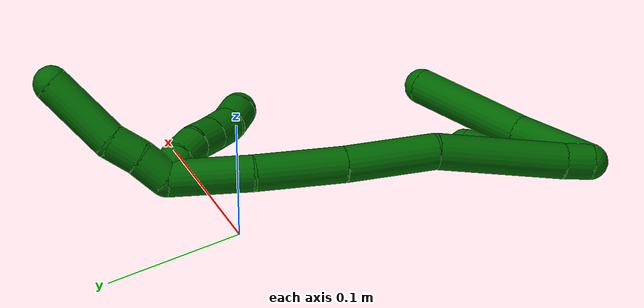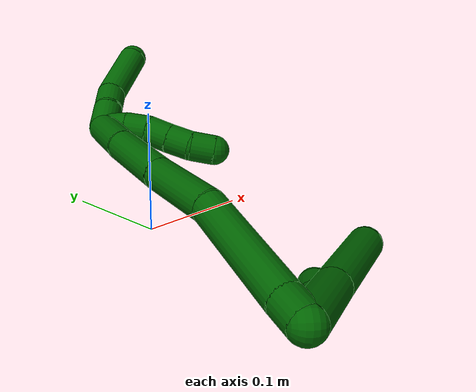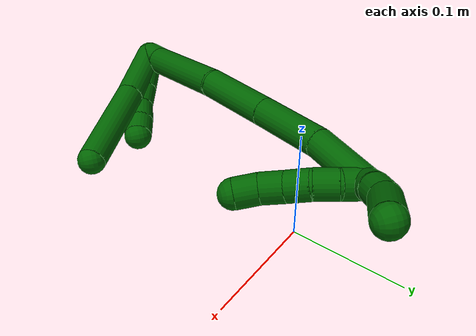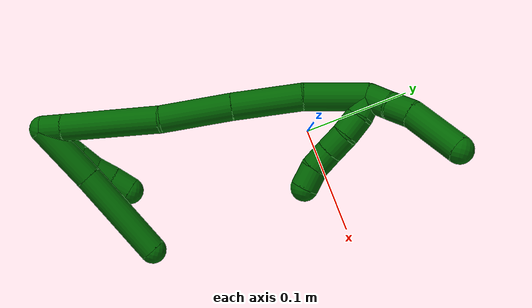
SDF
<sdf version="1.7">
 <world name="default">
  <model name="6">
   <static>0</static>
   <link name="6">
    <collision name="collision-cylinder-e_1_2_8">
     <pose>0.023418 0.010511 0.016057 -0.579586 0.884276 -0.280468</pose>
     <geometry><cylinder><radius>0.0125</radius><length>0.060555</length></cylinder></geometry>
     <surface>
      <friction><ode><mu>1.16</mu><mu2>1.16</mu2><slip1>0</slip1><slip2>0</slip2></ode></friction>
      <contact><ode><kp>1e+06</kp><kd>1</kd><max_vel>0</max_vel><min_depth>0.001</min_depth></ode></contact>
     </surface>
    </collision>
    <visual name="visual-cylinder-e_1_2_8">
     <pose>0.023418 0.010511 0.016057 -0.579586 0.884276 -0.280468</pose>
     <geometry><cylinder><radius>0.0125</radius><length>0.060555</length></cylinder></geometry>
     <material><ambient>0 0.392157 0.003922 1</ambient></material>
    </visual>
    <collision name="collision-cylinder-e_2_8_6">
     <pose>0.080051 0.037789 0.05693 -0.59423 0.837042 -0.27071</pose>
     <geometry><cylinder><radius>0.0125</radius><length>0.089445</length></cylinder></geometry>
     <surface>
      <friction><ode><mu>1.16</mu><mu2>1.16</mu2><slip1>0</slip1><slip2>0</slip2></ode></friction>
      <contact><ode><kp>1e+06</kp><kd>1</kd><max_vel>0</max_vel><min_depth>0.001</min_depth></ode></contact>
     </surface>
    </collision>
    <visual name="visual-cylinder-e_2_8_6">
     <pose>0.080051 0.037789 0.05693 -0.59423 0.837042 -0.27071</pose>
     <geometry><cylinder><radius>0.0125</radius><length>0.089445</length></cylinder></geometry>
     <material><ambient>0 0.392157 0.003922 1</ambient></material>
    </visual>
    <collision name="collision-cylinder-e_1_2_9">
     <pose>0.008988 0.001634 0.004068 -0.381937 1.11698 -0.240433</pose>
     <geometry><cylinder><radius>0.0125</radius><length>0.02</length></cylinder></geometry>
     <surface>
      <friction><ode><mu>1.16</mu><mu2>1.16</mu2><slip1>0</slip1><slip2>0</slip2></ode></friction>
      <contact><ode><kp>1e+06</kp><kd>1</kd><max_vel>0</max_vel><min_depth>0.001</min_depth></ode></contact>
     </surface>
    </collision>
    <visual name="visual-cylinder-e_1_2_9">
     <pose>0.008988 0.001634 0.004068 -0.381937 1.11698 -0.240433</pose>
     <geometry><cylinder><radius>0.0125</radius><length>0.02</length></cylinder></geometry>
     <material><ambient>0 0.392157 0.003922 1</ambient></material>
    </visual>
    <collision name="collision-cylinder-e_2_9_10">
     <pose>0.027043 0.004735 0.012089 -0.35539 1.13553 -0.228097</pose>
     <geometry><cylinder><radius>0.0125</radius><length>0.02</length></cylinder></geometry>
     <surface>
      <friction><ode><mu>1.16</mu><mu2>1.16</mu2><slip1>0</slip1><slip2>0</slip2></ode></friction>
      <contact><ode><kp>1e+06</kp><kd>1</kd><max_vel>0</max_vel><min_depth>0.001</min_depth></ode></contact>
     </surface>
    </collision>
    <visual name="visual-cylinder-e_2_9_10">
     <pose>0.027043 0.004735 0.012089 -0.35539 1.13553 -0.228097</pose>
     <geometry><cylinder><radius>0.0125</radius><length>0.02</length></cylinder></geometry>
     <material><ambient>0 0.392157 0.003922 1</ambient></material>
    </visual>
    <collision name="collision-cylinder-e_3_10_11">
     <pose>0.045125 0.00776 0.020082 -0.367949 1.12305 -0.233054</pose>
     <geometry><cylinder><radius>0.0125</radius><length>0.02</length></cylinder></geometry>
     <surface>
      <friction><ode><mu>1.16</mu><mu2>1.16</mu2><slip1>0</slip1><slip2>0</slip2></ode></friction>
      <contact><ode><kp>1e+06</kp><kd>1</kd><max_vel>0</max_vel><min_depth>0.001</min_depth></ode></contact>
     </surface>
    </collision>
    <visual name="visual-cylinder-e_3_10_11">
     <pose>0.045125 0.00776 0.020082 -0.367949 1.12305 -0.233054</pose>
     <geometry><cylinder><radius>0.0125</radius><length>0.02</length></cylinder></geometry>
     <material><ambient>0 0.392157 0.003922 1</ambient></material>
    </visual>
    <collision name="collision-cylinder-e_4_11_12">
     <pose>0.063325 0.012495 0.026472 -0.933975 1.16445 -0.640974</pose>
     <geometry><cylinder><radius>0.0125</radius><length>0.02</length></cylinder></geometry>
     <surface>
      <friction><ode><mu>1.16</mu><mu2>1.16</mu2><slip1>0</slip1><slip2>0</slip2></ode></friction>
      <contact><ode><kp>1e+06</kp><kd>1</kd><max_vel>0</max_vel><min_depth>0.001</min_depth></ode></contact>
     </surface>
    </collision>
    <visual name="visual-cylinder-e_4_11_12">
     <pose>0.063325 0.012495 0.026472 -0.933975 1.16445 -0.640974</pose>
     <geometry><cylinder><radius>0.0125</radius><length>0.02</length></cylinder></geometry>
     <material><ambient>0 0.392157 0.003922 1</ambient></material>
    </visual>
    <collision name="collision-cylinder-e_5_12_5">
     <pose>0.080968 0.020149 0.031726 -0.995343 1.00797 -0.582204</pose>
     <geometry><cylinder><radius>0.0125</radius><length>0.02</length></cylinder></geometry>
     <surface>
      <friction><ode><mu>1.16</mu><mu2>1.16</mu2><slip1>0</slip1><slip2>0</slip2></ode></friction>
      <contact><ode><kp>1e+06</kp><kd>1</kd><max_vel>0</max_vel><min_depth>0.001</min_depth></ode></contact>
     </surface>
    </collision>
    <visual name="visual-cylinder-e_5_12_5">
     <pose>0.080968 0.020149 0.031726 -0.995343 1.00797 -0.582204</pose>
     <geometry><cylinder><radius>0.0125</radius><length>0.02</length></cylinder></geometry>
     <material><ambient>0 0.392157 0.003922 1</ambient></material>
    </visual>
    <collision name="collision-cylinder-e_1_2_13">
     <pose>0.007129 0.006459 -0.003226 -2.034 0.779132 -1.17224</pose>
     <geometry><cylinder><radius>0.0125</radius><length>0.020292</length></cylinder></geometry>
     <surface>
      <friction><ode><mu>1.16</mu><mu2>1.16</mu2><slip1>0</slip1><slip2>0</slip2></ode></friction>
      <contact><ode><kp>1e+06</kp><kd>1</kd><max_vel>0</max_vel><min_depth>0.001</min_depth></ode></contact>
     </surface>
    </collision>
    <visual name="visual-cylinder-e_1_2_13">
     <pose>0.007129 0.006459 -0.003226 -2.034 0.779132 -1.17224</pose>
     <geometry><cylinder><radius>0.0125</radius><length>0.020292</length></cylinder></geometry>
     <material><ambient>0 0.392157 0.003922 1</ambient></material>
    </visual>
    <collision name="collision-cylinder-e_2_13_14">
     <pose>0.045094 0.044674 -0.021064 -2.00205 0.722826 -1.06616</pose>
     <geometry><cylinder><radius>0.0125</radius><length>0.093227</length></cylinder></geometry>
     <surface>
      <friction><ode><mu>1.16</mu><mu2>1.16</mu2><slip1>0</slip1><slip2>0</slip2></ode></friction>
      <contact><ode><kp>1e+06</kp><kd>1</kd><max_vel>0</max_vel><min_depth>0.001</min_depth></ode></contact>
     </surface>
    </collision>
    <visual name="visual-cylinder-e_2_13_14">
     <pose>0.045094 0.044674 -0.021064 -2.00205 0.722826 -1.06616</pose>
     <geometry><cylinder><radius>0.0125</radius><length>0.093227</length></cylinder></geometry>
     <material><ambient>0 0.392157 0.003922 1</ambient></material>
    </visual>
    <collision name="collision-cylinder-e_3_14_15">
     <pose>0.100241 0.093282 -0.049202 -2.24713 0.844213 -1.50505</pose>
     <geometry><cylinder><radius>0.0125</radius><length>0.065055</length></cylinder></geometry>
     <surface>
      <friction><ode><mu>1.16</mu><mu2>1.16</mu2><slip1>0</slip1><slip2>0</slip2></ode></friction>
      <contact><ode><kp>1e+06</kp><kd>1</kd><max_vel>0</max_vel><min_depth>0.001</min_depth></ode></contact>
     </surface>
    </collision>
    <visual name="visual-cylinder-e_3_14_15">
     <pose>0.100241 0.093282 -0.049202 -2.24713 0.844213 -1.50505</pose>
     <geometry><cylinder><radius>0.0125</radius><length>0.065055</length></cylinder></geometry>
     <material><ambient>0 0.392157 0.003922 1</ambient></material>
    </visual>
    <collision name="collision-cylinder-e_4_15_16">
     <pose>0.148206 0.127534 -0.074818 -2.17806 0.840304 -1.41414</pose>
     <geometry><cylinder><radius>0.0125</radius><length>0.063509</length></cylinder></geometry>
     <surface>
      <friction><ode><mu>1.16</mu><mu2>1.16</mu2><slip1>0</slip1><slip2>0</slip2></ode></friction>
      <contact><ode><kp>1e+06</kp><kd>1</kd><max_vel>0</max_vel><min_depth>0.001</min_depth></ode></contact>
     </surface>
    </collision>
    <visual name="visual-cylinder-e_4_15_16">
     <pose>0.148206 0.127534 -0.074818 -2.17806 0.840304 -1.41414</pose>
     <geometry><cylinder><radius>0.0125</radius><length>0.063509</length></cylinder></geometry>
     <material><ambient>0 0.392157 0.003922 1</ambient></material>
    </visual>
    <collision name="collision-cylinder-e_5_16_1">
     <pose>0.195615 0.159787 -0.094226 -2.02854 0.962085 -1.39611</pose>
     <geometry><cylinder><radius>0.0125</radius><length>0.057917</length></cylinder></geometry>
     <surface>
      <friction><ode><mu>1.16</mu><mu2>1.16</mu2><slip1>0</slip1><slip2>0</slip2></ode></friction>
      <contact><ode><kp>1e+06</kp><kd>1</kd><max_vel>0</max_vel><min_depth>0.001</min_depth></ode></contact>
     </surface>
    </collision>
    <visual name="visual-cylinder-e_5_16_1">
     <pose>0.195615 0.159787 -0.094226 -2.02854 0.962085 -1.39611</pose>
     <geometry><cylinder><radius>0.0125</radius><length>0.057917</length></cylinder></geometry>
     <material><ambient>0 0.392157 0.003922 1</ambient></material>
    </visual>
    <collision name="collision-cylinder-e_1_1_17">
     <pose>0.224001 0.185017 -0.099621 -1.38751 0.413341 -0.34527</pose>
     <geometry><cylinder><radius>0.0125</radius><length>0.023045</length></cylinder></geometry>
     <surface>
      <friction><ode><mu>1.16</mu><mu2>1.16</mu2><slip1>0</slip1><slip2>0</slip2></ode></friction>
      <contact><ode><kp>1e+06</kp><kd>1</kd><max_vel>0</max_vel><min_depth>0.001</min_depth></ode></contact>
     </surface>
    </collision>
    <visual name="visual-cylinder-e_1_1_17">
     <pose>0.224001 0.185017 -0.099621 -1.38751 0.413341 -0.34527</pose>
     <geometry><cylinder><radius>0.0125</radius><length>0.023045</length></cylinder></geometry>
     <material><ambient>0 0.392157 0.003922 1</ambient></material>
    </visual>
    <collision name="collision-cylinder-e_2_17_18">
     <pose>0.234747 0.204585 -0.096163 -1.40534 0.580911 -0.495855</pose>
     <geometry><cylinder><radius>0.0125</radius><length>0.022297</length></cylinder></geometry>
     <surface>
      <friction><ode><mu>1.16</mu><mu2>1.16</mu2><slip1>0</slip1><slip2>0</slip2></ode></friction>
      <contact><ode><kp>1e+06</kp><kd>1</kd><max_vel>0</max_vel><min_depth>0.001</min_depth></ode></contact>
     </surface>
    </collision>
    <visual name="visual-cylinder-e_2_17_18">
     <pose>0.234747 0.204585 -0.096163 -1.40534 0.580911 -0.495855</pose>
     <geometry><cylinder><radius>0.0125</radius><length>0.022297</length></cylinder></geometry>
     <material><ambient>0 0.392157 0.003922 1</ambient></material>
    </visual>
    <collision name="collision-cylinder-e_3_18_4">
     <pose>0.2522 0.23632 -0.084129 -1.13497 0.427677 -0.275097</pose>
     <geometry><cylinder><radius>0.0125</radius><length>0.054658</length></cylinder></geometry>
     <surface>
      <friction><ode><mu>1.16</mu><mu2>1.16</mu2><slip1>0</slip1><slip2>0</slip2></ode></friction>
      <contact><ode><kp>1e+06</kp><kd>1</kd><max_vel>0</max_vel><min_depth>0.001</min_depth></ode></contact>
     </surface>
    </collision>
    <visual name="visual-cylinder-e_3_18_4">
     <pose>0.2522 0.23632 -0.084129 -1.13497 0.427677 -0.275097</pose>
     <geometry><cylinder><radius>0.0125</radius><length>0.054658</length></cylinder></geometry>
     <material><ambient>0 0.392157 0.003922 1</ambient></material>
    </visual>
    <collision name="collision-cylinder-e_1_1_19">
     <pose>0.217134 0.174463 -0.091799 0.018322 -0.225773 -0.002077</pose>
     <geometry><cylinder><radius>0.0125</radius><length>0.02</length></cylinder></geometry>
     <surface>
      <friction><ode><mu>1.16</mu><mu2>1.16</mu2><slip1>0</slip1><slip2>0</slip2></ode></friction>
      <contact><ode><kp>1e+06</kp><kd>1</kd><max_vel>0</max_vel><min_depth>0.001</min_depth></ode></contact>
     </surface>
    </collision>
    <visual name="visual-cylinder-e_1_1_19">
     <pose>0.217134 0.174463 -0.091799 0.018322 -0.225773 -0.002077</pose>
     <geometry><cylinder><radius>0.0125</radius><length>0.02</length></cylinder></geometry>
     <material><ambient>0 0.392157 0.003922 1</ambient></material>
    </visual>
    <collision name="collision-cylinder-e_2_19_20">
     <pose>0.211847 0.1718 -0.072861 0.263883 -0.30978 -0.041438</pose>
     <geometry><cylinder><radius>0.0125</radius><length>0.02</length></cylinder></geometry>
     <surface>
      <friction><ode><mu>1.16</mu><mu2>1.16</mu2><slip1>0</slip1><slip2>0</slip2></ode></friction>
      <contact><ode><kp>1e+06</kp><kd>1</kd><max_vel>0</max_vel><min_depth>0.001</min_depth></ode></contact>
     </surface>
    </collision>
    <visual name="visual-cylinder-e_2_19_20">
     <pose>0.211847 0.1718 -0.072861 0.263883 -0.30978 -0.041438</pose>
     <geometry><cylinder><radius>0.0125</radius><length>0.02</length></cylinder></geometry>
     <material><ambient>0 0.392157 0.003922 1</ambient></material>
    </visual>
    <collision name="collision-cylinder-e_3_20_21">
     <pose>0.206159 0.164784 -0.055152 0.489108 -0.267104 -0.067029</pose>
     <geometry><cylinder><radius>0.0125</radius><length>0.02</length></cylinder></geometry>
     <surface>
      <friction><ode><mu>1.16</mu><mu2>1.16</mu2><slip1>0</slip1><slip2>0</slip2></ode></friction>
      <contact><ode><kp>1e+06</kp><kd>1</kd><max_vel>0</max_vel><min_depth>0.001</min_depth></ode></contact>
     </surface>
    </collision>
    <visual name="visual-cylinder-e_3_20_21">
     <pose>0.206159 0.164784 -0.055152 0.489108 -0.267104 -0.067029</pose>
     <geometry><cylinder><radius>0.0125</radius><length>0.02</length></cylinder></geometry>
     <material><ambient>0 0.392157 0.003922 1</ambient></material>
    </visual>
    <collision name="collision-cylinder-e_4_21_22">
     <pose>0.200781 0.156162 -0.037933 0.439246 -0.277417 -0.062306</pose>
     <geometry><cylinder><radius>0.0125</radius><length>0.02</length></cylinder></geometry>
     <surface>
      <friction><ode><mu>1.16</mu><mu2>1.16</mu2><slip1>0</slip1><slip2>0</slip2></ode></friction>
      <contact><ode><kp>1e+06</kp><kd>1</kd><max_vel>0</max_vel><min_depth>0.001</min_depth></ode></contact>
     </surface>
    </collision>
    <visual name="visual-cylinder-e_4_21_22">
     <pose>0.200781 0.156162 -0.037933 0.439246 -0.277417 -0.062306</pose>
     <geometry><cylinder><radius>0.0125</radius><length>0.02</length></cylinder></geometry>
     <material><ambient>0 0.392157 0.003922 1</ambient></material>
    </visual>
    <collision name="collision-cylinder-e_5_22_3">
     <pose>0.19701 0.149883 -0.019525 0.221906 -0.103432 -0.011534</pose>
     <geometry><cylinder><radius>0.0125</radius><length>0.02</length></cylinder></geometry>
     <surface>
      <friction><ode><mu>1.16</mu><mu2>1.16</mu2><slip1>0</slip1><slip2>0</slip2></ode></friction>
      <contact><ode><kp>1e+06</kp><kd>1</kd><max_vel>0</max_vel><min_depth>0.001</min_depth></ode></contact>
     </surface>
    </collision>
    <visual name="visual-cylinder-e_5_22_3">
     <pose>0.19701 0.149883 -0.019525 0.221906 -0.103432 -0.011534</pose>
     <geometry><cylinder><radius>0.0125</radius><length>0.02</length></cylinder></geometry>
     <material><ambient>0 0.392157 0.003922 1</ambient></material>
    </visual>
    <collision name="collision-sphere-3">
     <pose>0.195977 0.147694 -0.009823 0 -0 0</pose>
     <geometry><sphere><radius>0.0125</radius></sphere></geometry>
     <surface>
      <friction><ode><mu>1.16</mu><mu2>1.16</mu2><slip1>0</slip1><slip2>0</slip2></ode></friction>
      <contact><ode><kp>1e+06</kp><kd>1</kd><max_vel>0</max_vel><min_depth>0.001</min_depth></ode></contact>
     </surface>
    </collision>
    <visual name="visual-sphere-3">
     <pose>0.195977 0.147694 -0.009823 0 -0 0</pose>
     <geometry><sphere><radius>0.0125</radius></sphere></geometry>
     <material><ambient>0 0.392157 0.003922 1</ambient></material>
    </visual>
    <collision name="collision-sphere-22">
     <pose>0.198042 0.152072 -0.029228 0 -0 0</pose>
     <geometry><sphere><radius>0.0125</radius></sphere></geometry>
     <surface>
      <friction><ode><mu>1.16</mu><mu2>1.16</mu2><slip1>0</slip1><slip2>0</slip2></ode></friction>
      <contact><ode><kp>1e+06</kp><kd>1</kd><max_vel>0</max_vel><min_depth>0.001</min_depth></ode></contact>
     </surface>
    </collision>
    <visual name="visual-sphere-22">
     <pose>0.198042 0.152072 -0.029228 0 -0 0</pose>
     <geometry><sphere><radius>0.0125</radius></sphere></geometry>
     <material><ambient>0 0.392157 0.003922 1</ambient></material>
    </visual>
    <collision name="collision-sphere-21">
     <pose>0.20352 0.160252 -0.046637 0 -0 0</pose>
     <geometry><sphere><radius>0.0125</radius></sphere></geometry>
     <surface>
      <friction><ode><mu>1.16</mu><mu2>1.16</mu2><slip1>0</slip1><slip2>0</slip2></ode></friction>
      <contact><ode><kp>1e+06</kp><kd>1</kd><max_vel>0</max_vel><min_depth>0.001</min_depth></ode></contact>
     </surface>
    </collision>
    <visual name="visual-sphere-21">
     <pose>0.20352 0.160252 -0.046637 0 -0 0</pose>
     <geometry><sphere><radius>0.0125</radius></sphere></geometry>
     <material><ambient>0 0.392157 0.003922 1</ambient></material>
    </visual>
    <collision name="collision-sphere-20">
     <pose>0.208798 0.169316 -0.063666 0 -0 0</pose>
     <geometry><sphere><radius>0.0125</radius></sphere></geometry>
     <surface>
      <friction><ode><mu>1.16</mu><mu2>1.16</mu2><slip1>0</slip1><slip2>0</slip2></ode></friction>
      <contact><ode><kp>1e+06</kp><kd>1</kd><max_vel>0</max_vel><min_depth>0.001</min_depth></ode></contact>
     </surface>
    </collision>
    <visual name="visual-sphere-20">
     <pose>0.208798 0.169316 -0.063666 0 -0 0</pose>
     <geometry><sphere><radius>0.0125</radius></sphere></geometry>
     <material><ambient>0 0.392157 0.003922 1</ambient></material>
    </visual>
    <collision name="collision-sphere-19">
     <pose>0.214895 0.174284 -0.082055 0 -0 0</pose>
     <geometry><sphere><radius>0.0125</radius></sphere></geometry>
     <surface>
      <friction><ode><mu>1.16</mu><mu2>1.16</mu2><slip1>0</slip1><slip2>0</slip2></ode></friction>
      <contact><ode><kp>1e+06</kp><kd>1</kd><max_vel>0</max_vel><min_depth>0.001</min_depth></ode></contact>
     </surface>
    </collision>
    <visual name="visual-sphere-19">
     <pose>0.214895 0.174284 -0.082055 0 -0 0</pose>
     <geometry><sphere><radius>0.0125</radius></sphere></geometry>
     <material><ambient>0 0.392157 0.003922 1</ambient></material>
    </visual>
    <collision name="collision-sphere-11">
     <pose>0.054139 0.009317 0.024121 0 -0 0</pose>
     <geometry><sphere><radius>0.0125</radius></sphere></geometry>
     <surface>
      <friction><ode><mu>1.16</mu><mu2>1.16</mu2><slip1>0</slip1><slip2>0</slip2></ode></friction>
      <contact><ode><kp>1e+06</kp><kd>1</kd><max_vel>0</max_vel><min_depth>0.001</min_depth></ode></contact>
     </surface>
    </collision>
    <visual name="visual-sphere-11">
     <pose>0.054139 0.009317 0.024121 0 -0 0</pose>
     <geometry><sphere><radius>0.0125</radius></sphere></geometry>
     <material><ambient>0 0.392157 0.003922 1</ambient></material>
    </visual>
    <collision name="collision-sphere-10">
     <pose>0.036111 0.006202 0.016042 0 -0 0</pose>
     <geometry><sphere><radius>0.0125</radius></sphere></geometry>
     <surface>
      <friction><ode><mu>1.16</mu><mu2>1.16</mu2><slip1>0</slip1><slip2>0</slip2></ode></friction>
      <contact><ode><kp>1e+06</kp><kd>1</kd><max_vel>0</max_vel><min_depth>0.001</min_depth></ode></contact>
     </surface>
    </collision>
    <visual name="visual-sphere-10">
     <pose>0.036111 0.006202 0.016042 0 -0 0</pose>
     <geometry><sphere><radius>0.0125</radius></sphere></geometry>
     <material><ambient>0 0.392157 0.003922 1</ambient></material>
    </visual>
    <collision name="collision-sphere-6">
     <pose>0.113264 0.054556 0.081745 0 -0 0</pose>
     <geometry><sphere><radius>0.0125</radius></sphere></geometry>
     <surface>
      <friction><ode><mu>1.16</mu><mu2>1.16</mu2><slip1>0</slip1><slip2>0</slip2></ode></friction>
      <contact><ode><kp>1e+06</kp><kd>1</kd><max_vel>0</max_vel><min_depth>0.001</min_depth></ode></contact>
     </surface>
    </collision>
    <visual name="visual-sphere-6">
     <pose>0.113264 0.054556 0.081745 0 -0 0</pose>
     <geometry><sphere><radius>0.0125</radius></sphere></geometry>
     <material><ambient>0 0.392157 0.003922 1</ambient></material>
    </visual>
    <collision name="collision-sphere-9">
     <pose>0.017976 0.003268 0.008136 0 -0 0</pose>
     <geometry><sphere><radius>0.0125</radius></sphere></geometry>
     <surface>
      <friction><ode><mu>1.16</mu><mu2>1.16</mu2><slip1>0</slip1><slip2>0</slip2></ode></friction>
      <contact><ode><kp>1e+06</kp><kd>1</kd><max_vel>0</max_vel><min_depth>0.001</min_depth></ode></contact>
     </surface>
    </collision>
    <visual name="visual-sphere-9">
     <pose>0.017976 0.003268 0.008136 0 -0 0</pose>
     <geometry><sphere><radius>0.0125</radius></sphere></geometry>
     <material><ambient>0 0.392157 0.003922 1</ambient></material>
    </visual>
    <collision name="collision-sphere-2">
     <geometry><sphere><radius>0.0125</radius></sphere></geometry>
     <surface>
      <friction><ode><mu>1.16</mu><mu2>1.16</mu2><slip1>0</slip1><slip2>0</slip2></ode></friction>
      <contact><ode><kp>1e+06</kp><kd>1</kd><max_vel>0</max_vel><min_depth>0.001</min_depth></ode></contact>
     </surface>
    </collision>
    <visual name="visual-sphere-2">
     <geometry><sphere><radius>0.0125</radius></sphere></geometry>
     <material><ambient>0 0.392157 0.003922 1</ambient></material>
    </visual>
    <collision name="collision-sphere-8">
     <pose>0.046837 0.021021 0.032115 0 -0 0</pose>
     <geometry><sphere><radius>0.0125</radius></sphere></geometry>
     <surface>
      <friction><ode><mu>1.16</mu><mu2>1.16</mu2><slip1>0</slip1><slip2>0</slip2></ode></friction>
      <contact><ode><kp>1e+06</kp><kd>1</kd><max_vel>0</max_vel><min_depth>0.001</min_depth></ode></contact>
     </surface>
    </collision>
    <visual name="visual-sphere-8">
     <pose>0.046837 0.021021 0.032115 0 -0 0</pose>
     <geometry><sphere><radius>0.0125</radius></sphere></geometry>
     <material><ambient>0 0.392157 0.003922 1</ambient></material>
    </visual>
    <collision name="collision-sphere-12">
     <pose>0.072511 0.015672 0.028822 0 -0 0</pose>
     <geometry><sphere><radius>0.0125</radius></sphere></geometry>
     <surface>
      <friction><ode><mu>1.16</mu><mu2>1.16</mu2><slip1>0</slip1><slip2>0</slip2></ode></friction>
      <contact><ode><kp>1e+06</kp><kd>1</kd><max_vel>0</max_vel><min_depth>0.001</min_depth></ode></contact>
     </surface>
    </collision>
    <visual name="visual-sphere-12">
     <pose>0.072511 0.015672 0.028822 0 -0 0</pose>
     <geometry><sphere><radius>0.0125</radius></sphere></geometry>
     <material><ambient>0 0.392157 0.003922 1</ambient></material>
    </visual>
    <collision name="collision-sphere-5">
     <pose>0.089426 0.024625 0.03463 0 -0 0</pose>
     <geometry><sphere><radius>0.0125</radius></sphere></geometry>
     <surface>
      <friction><ode><mu>1.16</mu><mu2>1.16</mu2><slip1>0</slip1><slip2>0</slip2></ode></friction>
      <contact><ode><kp>1e+06</kp><kd>1</kd><max_vel>0</max_vel><min_depth>0.001</min_depth></ode></contact>
     </surface>
    </collision>
    <visual name="visual-sphere-5">
     <pose>0.089426 0.024625 0.03463 0 -0 0</pose>
     <geometry><sphere><radius>0.0125</radius></sphere></geometry>
     <material><ambient>0 0.392157 0.003922 1</ambient></material>
    </visual>
    <collision name="collision-sphere-13">
     <pose>0.014259 0.012917 -0.006451 0 -0 0</pose>
     <geometry><sphere><radius>0.0125</radius></sphere></geometry>
     <surface>
      <friction><ode><mu>1.16</mu><mu2>1.16</mu2><slip1>0</slip1><slip2>0</slip2></ode></friction>
      <contact><ode><kp>1e+06</kp><kd>1</kd><max_vel>0</max_vel><min_depth>0.001</min_depth></ode></contact>
     </surface>
    </collision>
    <visual name="visual-sphere-13">
     <pose>0.014259 0.012917 -0.006451 0 -0 0</pose>
     <geometry><sphere><radius>0.0125</radius></sphere></geometry>
     <material><ambient>0 0.392157 0.003922 1</ambient></material>
    </visual>
    <collision name="collision-sphere-14">
     <pose>0.075929 0.07643 -0.035677 0 -0 0</pose>
     <geometry><sphere><radius>0.0125</radius></sphere></geometry>
     <surface>
      <friction><ode><mu>1.16</mu><mu2>1.16</mu2><slip1>0</slip1><slip2>0</slip2></ode></friction>
      <contact><ode><kp>1e+06</kp><kd>1</kd><max_vel>0</max_vel><min_depth>0.001</min_depth></ode></contact>
     </surface>
    </collision>
    <visual name="visual-sphere-14">
     <pose>0.075929 0.07643 -0.035677 0 -0 0</pose>
     <geometry><sphere><radius>0.0125</radius></sphere></geometry>
     <material><ambient>0 0.392157 0.003922 1</ambient></material>
    </visual>
    <collision name="collision-sphere-15">
     <pose>0.124554 0.110134 -0.062728 0 -0 0</pose>
     <geometry><sphere><radius>0.0125</radius></sphere></geometry>
     <surface>
      <friction><ode><mu>1.16</mu><mu2>1.16</mu2><slip1>0</slip1><slip2>0</slip2></ode></friction>
      <contact><ode><kp>1e+06</kp><kd>1</kd><max_vel>0</max_vel><min_depth>0.001</min_depth></ode></contact>
     </surface>
    </collision>
    <visual name="visual-sphere-15">
     <pose>0.124554 0.110134 -0.062728 0 -0 0</pose>
     <geometry><sphere><radius>0.0125</radius></sphere></geometry>
     <material><ambient>0 0.392157 0.003922 1</ambient></material>
    </visual>
    <collision name="collision-sphere-16">
     <pose>0.171858 0.144933 -0.086908 0 -0 0</pose>
     <geometry><sphere><radius>0.0125</radius></sphere></geometry>
     <surface>
      <friction><ode><mu>1.16</mu><mu2>1.16</mu2><slip1>0</slip1><slip2>0</slip2></ode></friction>
      <contact><ode><kp>1e+06</kp><kd>1</kd><max_vel>0</max_vel><min_depth>0.001</min_depth></ode></contact>
     </surface>
    </collision>
    <visual name="visual-sphere-16">
     <pose>0.171858 0.144933 -0.086908 0 -0 0</pose>
     <geometry><sphere><radius>0.0125</radius></sphere></geometry>
     <material><ambient>0 0.392157 0.003922 1</ambient></material>
    </visual>
    <collision name="collision-sphere-1">
     <pose>0.219373 0.174641 -0.101544 0 -0 0</pose>
     <geometry><sphere><radius>0.0125</radius></sphere></geometry>
     <surface>
      <friction><ode><mu>1.16</mu><mu2>1.16</mu2><slip1>0</slip1><slip2>0</slip2></ode></friction>
      <contact><ode><kp>1e+06</kp><kd>1</kd><max_vel>0</max_vel><min_depth>0.001</min_depth></ode></contact>
     </surface>
    </collision>
    <visual name="visual-sphere-1">
     <pose>0.219373 0.174641 -0.101544 0 -0 0</pose>
     <geometry><sphere><radius>0.0125</radius></sphere></geometry>
     <material><ambient>0 0.392157 0.003922 1</ambient></material>
    </visual>
    <collision name="collision-sphere-18">
     <pose>0.240865 0.213777 -0.094628 0 -0 0</pose>
     <geometry><sphere><radius>0.0125</radius></sphere></geometry>
     <surface>
      <friction><ode><mu>1.16</mu><mu2>1.16</mu2><slip1>0</slip1><slip2>0</slip2></ode></friction>
      <contact><ode><kp>1e+06</kp><kd>1</kd><max_vel>0</max_vel><min_depth>0.001</min_depth></ode></contact>
     </surface>
    </collision>
    <visual name="visual-sphere-18">
     <pose>0.240865 0.213777 -0.094628 0 -0 0</pose>
     <geometry><sphere><radius>0.0125</radius></sphere></geometry>
     <material><ambient>0 0.392157 0.003922 1</ambient></material>
    </visual>
    <collision name="collision-sphere-17">
     <pose>0.228629 0.195392 -0.097698 0 -0 0</pose>
     <geometry><sphere><radius>0.0125</radius></sphere></geometry>
     <surface>
      <friction><ode><mu>1.16</mu><mu2>1.16</mu2><slip1>0</slip1><slip2>0</slip2></ode></friction>
      <contact><ode><kp>1e+06</kp><kd>1</kd><max_vel>0</max_vel><min_depth>0.001</min_depth></ode></contact>
     </surface>
    </collision>
    <visual name="visual-sphere-17">
     <pose>0.228629 0.195392 -0.097698 0 -0 0</pose>
     <geometry><sphere><radius>0.0125</radius></sphere></geometry>
     <material><ambient>0 0.392157 0.003922 1</ambient></material>
    </visual>
    <collision name="collision-sphere-4">
     <pose>0.263535 0.258863 -0.073631 0 -0 0</pose>
     <geometry><sphere><radius>0.0125</radius></sphere></geometry>
     <surface>
      <friction><ode><mu>1.16</mu><mu2>1.16</mu2><slip1>0</slip1><slip2>0</slip2></ode></friction>
      <contact><ode><kp>1e+06</kp><kd>1</kd><max_vel>0</max_vel><min_depth>0.001</min_depth></ode></contact>
     </surface>
    </collision>
    <visual name="visual-sphere-4">
     <pose>0.263535 0.258863 -0.073631 0 -0 0</pose>
     <geometry><sphere><radius>0.0125</radius></sphere></geometry>
     <material><ambient>0 0.392157 0.003922 1</ambient></material>
    </visual>
    <inertial>
     <pose>0.119385 0.094339 -0.029426 0 -0 0</pose>
     <mass>0.75</mass>
     <inertia>
      <ixx>3.4e-05</ixx>
      <ixy>0</ixy>
      <ixz>0</ixz>
      <iyy>7.3e-05</iyy>
      <iyz>0</iyz>
      <izz>-0.000298</izz>
     </inertia>
    </inertial>
   </link>
   <pose>-0.087965 -0.228208 0.038467 1.61603 0.537934 0.961567</pose>
  </model>
 </world>
</sdf>
